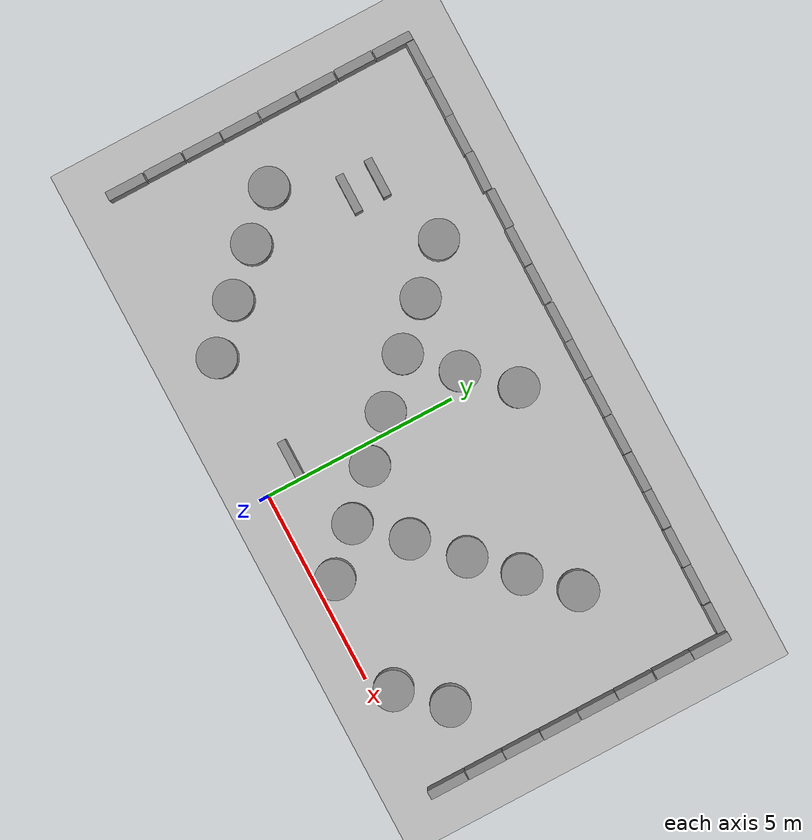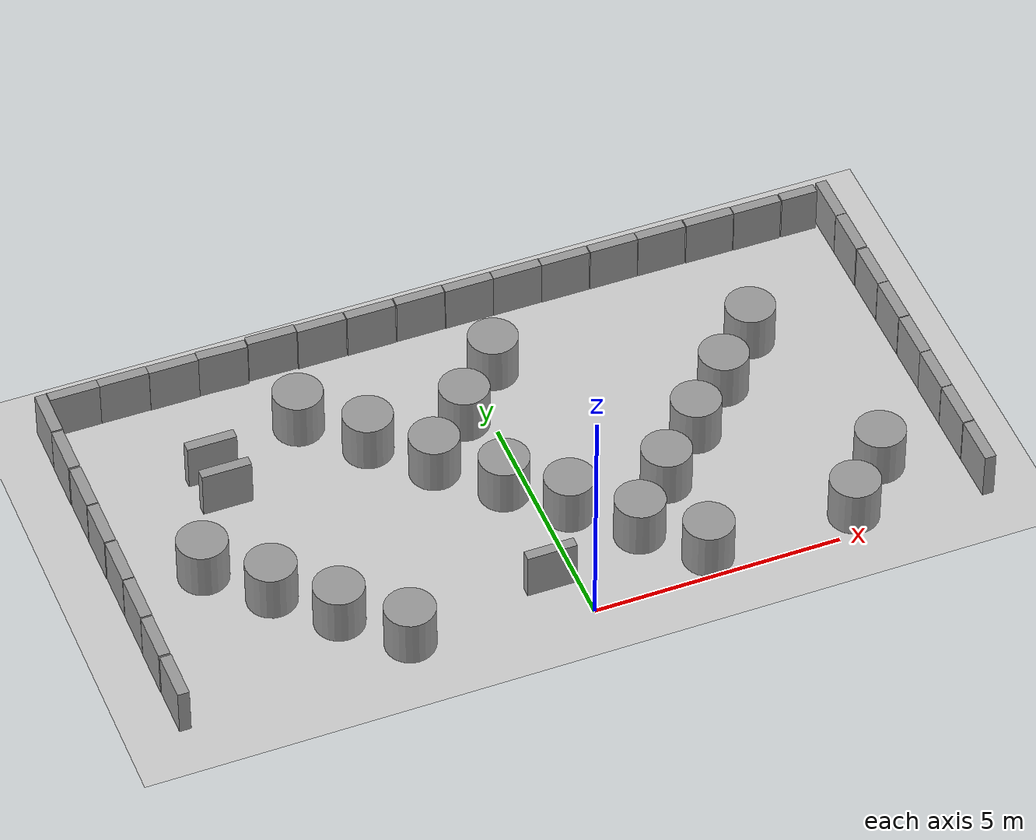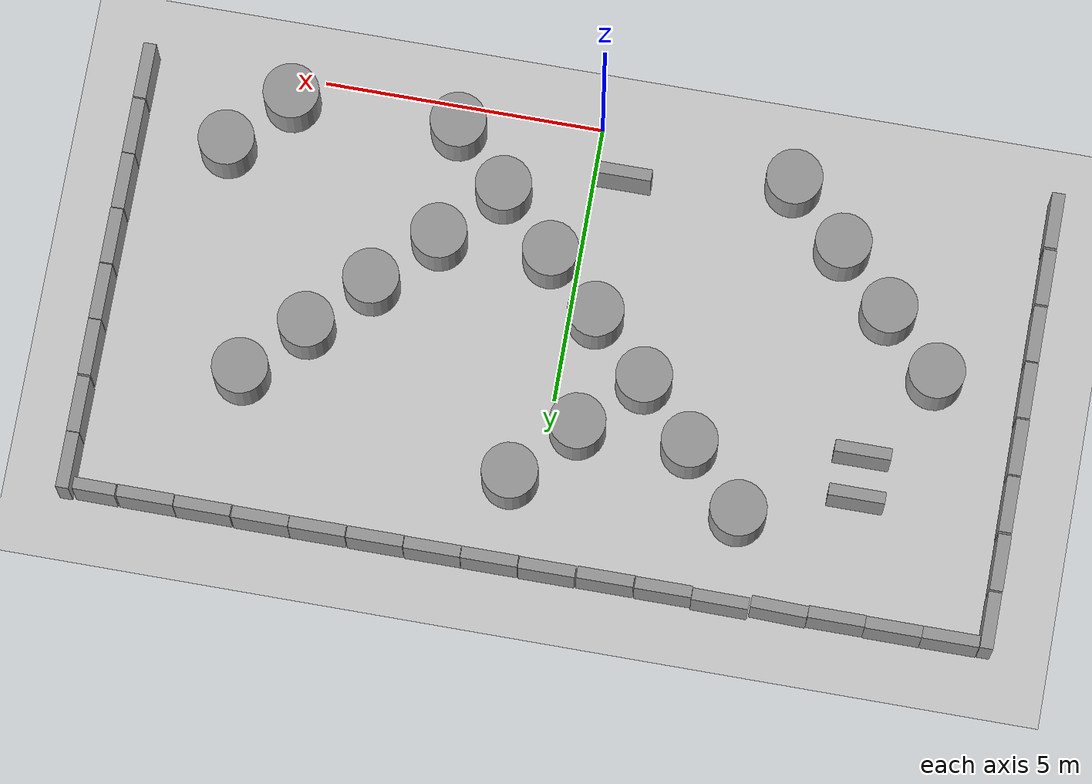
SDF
<sdf version="1.6">
 <world name="default">
  <model name="ground_plane">
   <static>1</static>
   <static>1</static>
   <link name="link">
    <collision name="collision">
     <geometry><plane><normal>0 0 1</normal><size>100 100</size></plane></geometry>
     <surface><friction><ode><mu>100</mu><mu2>50</mu2></ode></friction></surface>
    </collision>
    <visual name="visual">
     <cast_shadows>0</cast_shadows>
     <geometry><plane><normal>0 0 1</normal><size>100 100</size></plane></geometry>
     <material>
      <script><uri>file://media/materials/scripts/gazebo.material</uri><name>Gazebo/Grey</name></script>
     </material>
    </visual>
   </link>
  </model>
  <model name="unit_box_clone">
   <pose>-7.49845 8.12012 0.5 0 -0 0.000357</pose>
   <link name="link">
    <inertial>
     <mass>1</mass>
     <inertia>
      <ixx>0.166667</ixx>
      <ixy>0</ixy>
      <ixz>0</ixz>
      <iyy>0.166667</iyy>
      <iyz>0</iyz>
      <izz>0.166667</izz>
     </inertia>
    </inertial>
    <collision name="collision"><geometry><box><size>1 0.210541 1</size></box></geometry></collision>
    <visual name="visual">
     <geometry><box><size>1 0.210541 1</size></box></geometry>
     <material>
      <script><name>Gazebo/Grey</name><uri>file://media/materials/scripts/gazebo.material</uri></script>
     </material>
    </visual>
   </link>
  </model>
  <model name="unit_box_clone_0">
   <pose>-6.4973 8.11998 0.5 0 0 -0.002248</pose>
   <link name="link">
    <inertial>
     <mass>1</mass>
     <inertia>
      <ixx>0.166667</ixx>
      <ixy>0</ixy>
      <ixz>0</ixz>
      <iyy>0.166667</iyy>
      <iyz>0</iyz>
      <izz>0.166667</izz>
     </inertia>
    </inertial>
    <collision name="collision"><geometry><box><size>1 0.210541 1</size></box></geometry></collision>
    <visual name="visual">
     <geometry><box><size>1 0.210541 1</size></box></geometry>
     <material>
      <script><name>Gazebo/Grey</name><uri>file://media/materials/scripts/gazebo.material</uri></script>
     </material>
    </visual>
   </link>
  </model>
  <model name="unit_box_clone_1">
   <pose>-5.49732 8.10872 0.5 0 0 -0.00224</pose>
   <link name="link">
    <inertial>
     <mass>1</mass>
     <inertia>
      <ixx>0.166667</ixx>
      <ixy>0</ixy>
      <ixz>0</ixz>
      <iyy>0.166667</iyy>
      <iyz>0</iyz>
      <izz>0.166667</izz>
     </inertia>
    </inertial>
    <collision name="collision"><geometry><box><size>1 0.210541 1</size></box></geometry></collision>
    <visual name="visual">
     <geometry><box><size>1 0.210541 1</size></box></geometry>
     <material>
      <script><name>Gazebo/Grey</name><uri>file://media/materials/scripts/gazebo.material</uri></script>
     </material>
    </visual>
   </link>
  </model>
  <model name="unit_box_clone_2">
   <pose>-4.49484 8.11081 0.499999 -1e-06 2e-06 -0.026921</pose>
   <link name="link">
    <inertial>
     <mass>1</mass>
     <inertia>
      <ixx>0.166667</ixx>
      <ixy>0</ixy>
      <ixz>0</ixz>
      <iyy>0.166667</iyy>
      <iyz>0</iyz>
      <izz>0.166667</izz>
     </inertia>
    </inertial>
    <collision name="collision"><geometry><box><size>1 0.210541 1</size></box></geometry></collision>
    <visual name="visual">
     <geometry><box><size>1 0.210541 1</size></box></geometry>
     <material>
      <script><name>Gazebo/Grey</name><uri>file://media/materials/scripts/gazebo.material</uri></script>
     </material>
    </visual>
   </link>
  </model>
  <model name="unit_box_clone_3">
   <pose>-3.46835 8.15001 0.5 -0 -0 -0.007885</pose>
   <link name="link">
    <inertial>
     <mass>1</mass>
     <inertia>
      <ixx>0.166667</ixx>
      <ixy>0</ixy>
      <ixz>0</ixz>
      <iyy>0.166667</iyy>
      <iyz>0</iyz>
      <izz>0.166667</izz>
     </inertia>
    </inertial>
    <collision name="collision"><geometry><box><size>1 0.210541 1</size></box></geometry></collision>
    <visual name="visual">
     <geometry><box><size>1 0.210541 1</size></box></geometry>
     <material>
      <script><name>Gazebo/Grey</name><uri>file://media/materials/scripts/gazebo.material</uri></script>
     </material>
    </visual>
   </link>
  </model>
  <model name="unit_box_clone_4">
   <pose>-2.46316 8.11881 0.5 0 -0 0.000357</pose>
   <link name="link">
    <inertial>
     <mass>1</mass>
     <inertia>
      <ixx>0.166667</ixx>
      <ixy>0</ixy>
      <ixz>0</ixz>
      <iyy>0.166667</iyy>
      <iyz>0</iyz>
      <izz>0.166667</izz>
     </inertia>
    </inertial>
    <collision name="collision"><geometry><box><size>1 0.210541 1</size></box></geometry></collision>
    <visual name="visual">
     <geometry><box><size>1 0.210541 1</size></box></geometry>
     <material>
      <script><name>Gazebo/Grey</name><uri>file://media/materials/scripts/gazebo.material</uri></script>
     </material>
    </visual>
   </link>
  </model>
  <model name="unit_box_clone_5">
   <pose>-1.44425 8.11214 0.5 0 -0 0.000357</pose>
   <link name="link">
    <inertial>
     <mass>1</mass>
     <inertia>
      <ixx>0.166667</ixx>
      <ixy>0</ixy>
      <ixz>0</ixz>
      <iyy>0.166667</iyy>
      <iyz>0</iyz>
      <izz>0.166667</izz>
     </inertia>
    </inertial>
    <collision name="collision"><geometry><box><size>1 0.210541 1</size></box></geometry></collision>
    <visual name="visual">
     <geometry><box><size>1 0.210541 1</size></box></geometry>
     <material>
      <script><name>Gazebo/Grey</name><uri>file://media/materials/scripts/gazebo.material</uri></script>
     </material>
    </visual>
   </link>
  </model>
  <model name="unit_box_clone_6">
   <pose>-0.418685 8.1188 0.5 0 -0 0.000357</pose>
   <link name="link">
    <inertial>
     <mass>1</mass>
     <inertia>
      <ixx>0.166667</ixx>
      <ixy>0</ixy>
      <ixz>0</ixz>
      <iyy>0.166667</iyy>
      <iyz>0</iyz>
      <izz>0.166667</izz>
     </inertia>
    </inertial>
    <collision name="collision"><geometry><box><size>1 0.210541 1</size></box></geometry></collision>
    <visual name="visual">
     <geometry><box><size>1 0.210541 1</size></box></geometry>
     <material>
      <script><name>Gazebo/Grey</name><uri>file://media/materials/scripts/gazebo.material</uri></script>
     </material>
    </visual>
   </link>
  </model>
  <model name="unit_box_clone_7">
   <pose>0.592834 8.11167 0.5 0 -0 0.000357</pose>
   <link name="link">
    <inertial>
     <mass>1</mass>
     <inertia>
      <ixx>0.166667</ixx>
      <ixy>0</ixy>
      <ixz>0</ixz>
      <iyy>0.166667</iyy>
      <iyz>0</iyz>
      <izz>0.166667</izz>
     </inertia>
    </inertial>
    <collision name="collision"><geometry><box><size>1 0.210541 1</size></box></geometry></collision>
    <visual name="visual">
     <geometry><box><size>1 0.210541 1</size></box></geometry>
     <material>
      <script><name>Gazebo/Grey</name><uri>file://media/materials/scripts/gazebo.material</uri></script>
     </material>
    </visual>
   </link>
  </model>
  <model name="unit_box_clone_8">
   <pose>1.60043 8.11017 0.5 0 -0 0.000357</pose>
   <link name="link">
    <inertial>
     <mass>1</mass>
     <inertia>
      <ixx>0.166667</ixx>
      <ixy>0</ixy>
      <ixz>0</ixz>
      <iyy>0.166667</iyy>
      <iyz>0</iyz>
      <izz>0.166667</izz>
     </inertia>
    </inertial>
    <collision name="collision"><geometry><box><size>1 0.210541 1</size></box></geometry></collision>
    <visual name="visual">
     <geometry><box><size>1 0.210541 1</size></box></geometry>
     <material>
      <script><name>Gazebo/Grey</name><uri>file://media/materials/scripts/gazebo.material</uri></script>
     </material>
    </visual>
   </link>
  </model>
  <model name="unit_box_clone_9">
   <pose>2.60987 8.10299 0.5 0 -0 0.000357</pose>
   <link name="link">
    <inertial>
     <mass>1</mass>
     <inertia>
      <ixx>0.166667</ixx>
      <ixy>0</ixy>
      <ixz>0</ixz>
      <iyy>0.166667</iyy>
      <iyz>0</iyz>
      <izz>0.166667</izz>
     </inertia>
    </inertial>
    <collision name="collision"><geometry><box><size>1 0.210541 1</size></box></geometry></collision>
    <visual name="visual">
     <geometry><box><size>1 0.210541 1</size></box></geometry>
     <material>
      <script><name>Gazebo/Grey</name><uri>file://media/materials/scripts/gazebo.material</uri></script>
     </material>
    </visual>
   </link>
  </model>
  <model name="unit_box_clone_10">
   <pose>3.62649 8.09939 0.5 0 -0 0.000357</pose>
   <link name="link">
    <inertial>
     <mass>1</mass>
     <inertia>
      <ixx>0.166667</ixx>
      <ixy>0</ixy>
      <ixz>0</ixz>
      <iyy>0.166667</iyy>
      <iyz>0</iyz>
      <izz>0.166667</izz>
     </inertia>
    </inertial>
    <collision name="collision"><geometry><box><size>1 0.210541 1</size></box></geometry></collision>
    <visual name="visual">
     <geometry><box><size>1 0.210541 1</size></box></geometry>
     <material>
      <script><name>Gazebo/Grey</name><uri>file://media/materials/scripts/gazebo.material</uri></script>
     </material>
    </visual>
   </link>
  </model>
  <model name="unit_box_clone_11">
   <pose>4.63309 8.09511 0.499996 1e-06 9e-06 -0.003323</pose>
   <link name="link">
    <inertial>
     <mass>1</mass>
     <inertia>
      <ixx>0.166667</ixx>
      <ixy>0</ixy>
      <ixz>0</ixz>
      <iyy>0.166667</iyy>
      <iyz>0</iyz>
      <izz>0.166667</izz>
     </inertia>
    </inertial>
    <collision name="collision"><geometry><box><size>1 0.210541 1</size></box></geometry></collision>
    <visual name="visual">
     <geometry><box><size>1 0.210541 1</size></box></geometry>
     <material>
      <script><name>Gazebo/Grey</name><uri>file://media/materials/scripts/gazebo.material</uri></script>
     </material>
    </visual>
   </link>
  </model>
  <model name="unit_box_0_clone_0">
   <pose>8.11522 6.68458 0.5 0 -0 -0.000146</pose>
   <link name="link">
    <inertial>
     <mass>1</mass>
     <inertia>
      <ixx>0.166667</ixx>
      <ixy>0</ixy>
      <ixz>0</ixz>
      <iyy>0.166667</iyy>
      <iyz>0</iyz>
      <izz>0.166667</izz>
     </inertia>
    </inertial>
    <collision name="collision"><geometry><box><size>0.230819 1 1</size></box></geometry></collision>
    <visual name="visual">
     <geometry><box><size>0.230819 1 1</size></box></geometry>
     <material>
      <script><name>Gazebo/Grey</name><uri>file://media/materials/scripts/gazebo.material</uri></script>
     </material>
    </visual>
   </link>
  </model>
  <model name="unit_box_0_clone_1">
   <pose>8.11915 5.6517 0.5 0 -0 4.5e-05</pose>
   <link name="link">
    <inertial>
     <mass>1</mass>
     <inertia>
      <ixx>0.166667</ixx>
      <ixy>0</ixy>
      <ixz>0</ixz>
      <iyy>0.166667</iyy>
      <iyz>0</iyz>
      <izz>0.166667</izz>
     </inertia>
    </inertial>
    <collision name="collision"><geometry><box><size>0.230819 1 1</size></box></geometry></collision>
    <visual name="visual">
     <geometry><box><size>0.230819 1 1</size></box></geometry>
     <material>
      <script><name>Gazebo/Grey</name><uri>file://media/materials/scripts/gazebo.material</uri></script>
     </material>
    </visual>
   </link>
  </model>
  <model name="unit_box_0_clone_2">
   <pose>8.11914 4.64016 0.5 0 -0 0.000139</pose>
   <link name="link">
    <inertial>
     <mass>1</mass>
     <inertia>
      <ixx>0.166667</ixx>
      <ixy>0</ixy>
      <ixz>0</ixz>
      <iyy>0.166667</iyy>
      <iyz>0</iyz>
      <izz>0.166667</izz>
     </inertia>
    </inertial>
    <collision name="collision"><geometry><box><size>0.230819 1 1</size></box></geometry></collision>
    <visual name="visual">
     <geometry><box><size>0.230819 1 1</size></box></geometry>
     <material>
      <script><name>Gazebo/Grey</name><uri>file://media/materials/scripts/gazebo.material</uri></script>
     </material>
    </visual>
   </link>
  </model>
  <model name="unit_box_0_clone_3">
   <pose>8.11914 3.62228 0.5 0 -0 0.00012</pose>
   <link name="link">
    <inertial>
     <mass>1</mass>
     <inertia>
      <ixx>0.166667</ixx>
      <ixy>0</ixy>
      <ixz>0</ixz>
      <iyy>0.166667</iyy>
      <iyz>0</iyz>
      <izz>0.166667</izz>
     </inertia>
    </inertial>
    <collision name="collision"><geometry><box><size>0.230819 1 1</size></box></geometry></collision>
    <visual name="visual">
     <geometry><box><size>0.230819 1 1</size></box></geometry>
     <material>
      <script><name>Gazebo/Grey</name><uri>file://media/materials/scripts/gazebo.material</uri></script>
     </material>
    </visual>
   </link>
  </model>
  <model name="unit_box_0_clone_4">
   <pose>8.11332 2.61063 0.5 0 0 -0.001114</pose>
   <link name="link">
    <inertial>
     <mass>1</mass>
     <inertia>
      <ixx>0.166667</ixx>
      <ixy>0</ixy>
      <ixz>0</ixz>
      <iyy>0.166667</iyy>
      <iyz>0</iyz>
      <izz>0.166667</izz>
     </inertia>
    </inertial>
    <collision name="collision"><geometry><box><size>0.230819 1 1</size></box></geometry></collision>
    <visual name="visual">
     <geometry><box><size>0.230819 1 1</size></box></geometry>
     <material>
      <script><name>Gazebo/Grey</name><uri>file://media/materials/scripts/gazebo.material</uri></script>
     </material>
    </visual>
   </link>
  </model>
  <model name="unit_box_0_clone_5">
   <pose>8.11277 1.59919 0.5 0 -0 0.00012</pose>
   <link name="link">
    <inertial>
     <mass>1</mass>
     <inertia>
      <ixx>0.166667</ixx>
      <ixy>0</ixy>
      <ixz>0</ixz>
      <iyy>0.166667</iyy>
      <iyz>0</iyz>
      <izz>0.166667</izz>
     </inertia>
    </inertial>
    <collision name="collision"><geometry><box><size>0.230819 1 1</size></box></geometry></collision>
    <visual name="visual">
     <geometry><box><size>0.230819 1 1</size></box></geometry>
     <material>
      <script><name>Gazebo/Grey</name><uri>file://media/materials/scripts/gazebo.material</uri></script>
     </material>
    </visual>
   </link>
  </model>
  <model name="unit_box_0_clone_6">
   <pose>8.11277 0.574938 0.5 0 -0 0.00012</pose>
   <link name="link">
    <inertial>
     <mass>1</mass>
     <inertia>
      <ixx>0.166667</ixx>
      <ixy>0</ixy>
      <ixz>0</ixz>
      <iyy>0.166667</iyy>
      <iyz>0</iyz>
      <izz>0.166667</izz>
     </inertia>
    </inertial>
    <collision name="collision"><geometry><box><size>0.230819 1 1</size></box></geometry></collision>
    <visual name="visual">
     <geometry><box><size>0.230819 1 1</size></box></geometry>
     <material>
      <script><name>Gazebo/Grey</name><uri>file://media/materials/scripts/gazebo.material</uri></script>
     </material>
    </visual>
   </link>
  </model>
  <model name="unit_box_0_clone_4_clone">
   <pose>-8.12647 7.71769 0.5 0 -0 0.00012</pose>
   <link name="link">
    <inertial>
     <mass>1</mass>
     <inertia>
      <ixx>0.166667</ixx>
      <ixy>0</ixy>
      <ixz>0</ixz>
      <iyy>0.166667</iyy>
      <iyz>0</iyz>
      <izz>0.166667</izz>
     </inertia>
    </inertial>
    <collision name="collision"><geometry><box><size>0.230819 1 1</size></box></geometry></collision>
    <visual name="visual">
     <geometry><box><size>0.230819 1 1</size></box></geometry>
     <material>
      <script><name>Gazebo/Grey</name><uri>file://media/materials/scripts/gazebo.material</uri></script>
     </material>
    </visual>
   </link>
  </model>
  <model name="unit_box_0_clone_4_clone_0">
   <pose>-8.13281 6.68715 0.5 0 -0 0.00012</pose>
   <link name="link">
    <inertial>
     <mass>1</mass>
     <inertia>
      <ixx>0.166667</ixx>
      <ixy>0</ixy>
      <ixz>0</ixz>
      <iyy>0.166667</iyy>
      <iyz>0</iyz>
      <izz>0.166667</izz>
     </inertia>
    </inertial>
    <collision name="collision"><geometry><box><size>0.230819 1 1</size></box></geometry></collision>
    <visual name="visual">
     <geometry><box><size>0.230819 1 1</size></box></geometry>
     <material>
      <script><name>Gazebo/Grey</name><uri>file://media/materials/scripts/gazebo.material</uri></script>
     </material>
    </visual>
   </link>
  </model>
  <model name="unit_box_0_clone_4_clone_1">
   <pose>-8.12606 5.64722 0.5 0 -0 0.00012</pose>
   <link name="link">
    <inertial>
     <mass>1</mass>
     <inertia>
      <ixx>0.166667</ixx>
      <ixy>0</ixy>
      <ixz>0</ixz>
      <iyy>0.166667</iyy>
      <iyz>0</iyz>
      <izz>0.166667</izz>
     </inertia>
    </inertial>
    <collision name="collision"><geometry><box><size>0.230819 1 1</size></box></geometry></collision>
    <visual name="visual">
     <geometry><box><size>0.230819 1 1</size></box></geometry>
     <material>
      <script><name>Gazebo/Grey</name><uri>file://media/materials/scripts/gazebo.material</uri></script>
     </material>
    </visual>
   </link>
  </model>
  <model name="unit_box_0_clone_4_clone_2">
   <pose>-8.12607 4.6208 0.5 0 -0 0.00012</pose>
   <link name="link">
    <inertial>
     <mass>1</mass>
     <inertia>
      <ixx>0.166667</ixx>
      <ixy>0</ixy>
      <ixz>0</ixz>
      <iyy>0.166667</iyy>
      <iyz>0</iyz>
      <izz>0.166667</izz>
     </inertia>
    </inertial>
    <collision name="collision"><geometry><box><size>0.230819 1 1</size></box></geometry></collision>
    <visual name="visual">
     <geometry><box><size>0.230819 1 1</size></box></geometry>
     <material>
      <script><name>Gazebo/Grey</name><uri>file://media/materials/scripts/gazebo.material</uri></script>
     </material>
    </visual>
   </link>
  </model>
  <model name="unit_box_0_clone_4_clone_3">
   <pose>-8.11932 3.59437 0.5 0 -0 0.00012</pose>
   <link name="link">
    <inertial>
     <mass>1</mass>
     <inertia>
      <ixx>0.166667</ixx>
      <ixy>0</ixy>
      <ixz>0</ixz>
      <iyy>0.166667</iyy>
      <iyz>0</iyz>
      <izz>0.166667</izz>
     </inertia>
    </inertial>
    <collision name="collision"><geometry><box><size>0.230819 1 1</size></box></geometry></collision>
    <visual name="visual">
     <geometry><box><size>0.230819 1 1</size></box></geometry>
     <material>
      <script><name>Gazebo/Grey</name><uri>file://media/materials/scripts/gazebo.material</uri></script>
     </material>
    </visual>
   </link>
  </model>
  <model name="unit_box_0_clone_4_clone_4">
   <pose>-8.11932 2.57471 0.5 0 -0 0.00012</pose>
   <link name="link">
    <inertial>
     <mass>1</mass>
     <inertia>
      <ixx>0.166667</ixx>
      <ixy>0</ixy>
      <ixz>0</ixz>
      <iyy>0.166667</iyy>
      <iyz>0</iyz>
      <izz>0.166667</izz>
     </inertia>
    </inertial>
    <collision name="collision"><geometry><box><size>0.230819 1 1</size></box></geometry></collision>
    <visual name="visual">
     <geometry><box><size>0.230819 1 1</size></box></geometry>
     <material>
      <script><name>Gazebo/Grey</name><uri>file://media/materials/scripts/gazebo.material</uri></script>
     </material>
    </visual>
   </link>
  </model>
  <model name="unit_box_0_clone_4_clone_5">
   <pose>-8.12608 1.54157 0.5 0 -0 0.00012</pose>
   <link name="link">
    <inertial>
     <mass>1</mass>
     <inertia>
      <ixx>0.166667</ixx>
      <ixy>0</ixy>
      <ixz>0</ixz>
      <iyy>0.166667</iyy>
      <iyz>0</iyz>
      <izz>0.166667</izz>
     </inertia>
    </inertial>
    <collision name="collision"><geometry><box><size>0.230819 1 1</size></box></geometry></collision>
    <visual name="visual">
     <geometry><box><size>0.230819 1 1</size></box></geometry>
     <material>
      <script><name>Gazebo/Grey</name><uri>file://media/materials/scripts/gazebo.material</uri></script>
     </material>
    </visual>
   </link>
  </model>
  <model name="unit_box_0_clone_4_clone_6">
   <pose>-8.11933 0.50163 0.5 0 -0 0.00012</pose>
   <link name="link">
    <inertial>
     <mass>1</mass>
     <inertia>
      <ixx>0.166667</ixx>
      <ixy>0</ixy>
      <ixz>0</ixz>
      <iyy>0.166667</iyy>
      <iyz>0</iyz>
      <izz>0.166667</izz>
     </inertia>
    </inertial>
    <collision name="collision"><geometry><box><size>0.230819 1 1</size></box></geometry></collision>
    <visual name="visual">
     <geometry><box><size>0.230819 1 1</size></box></geometry>
     <material>
      <script><name>Gazebo/Grey</name><uri>file://media/materials/scripts/gazebo.material</uri></script>
     </material>
    </visual>
   </link>
  </model>
  <model name="unit_box_0_clone_0_clone">
   <pose>8.11438 7.69322 0.5 0 -0 2.7e-05</pose>
   <link name="link">
    <inertial>
     <mass>1</mass>
     <inertia>
      <ixx>0.166667</ixx>
      <ixy>0</ixy>
      <ixz>0</ixz>
      <iyy>0.166667</iyy>
      <iyz>0</iyz>
      <izz>0.166667</izz>
     </inertia>
    </inertial>
    <collision name="collision"><geometry><box><size>0.230819 1 1</size></box></geometry></collision>
    <visual name="visual">
     <geometry><box><size>0.230819 1 1</size></box></geometry>
     <material>
      <script><name>Gazebo/Grey</name><uri>file://media/materials/scripts/gazebo.material</uri></script>
     </material>
    </visual>
   </link>
  </model>
  <model name="unit_box_clone_11_clone">
   <pose>5.65439 8.08347 0.499996 1e-06 -9e-06 -0.00301</pose>
   <link name="link">
    <inertial>
     <mass>1</mass>
     <inertia>
      <ixx>0.166667</ixx>
      <ixy>0</ixy>
      <ixz>0</ixz>
      <iyy>0.166667</iyy>
      <iyz>0</iyz>
      <izz>0.166667</izz>
     </inertia>
    </inertial>
    <collision name="collision"><geometry><box><size>1 0.210541 1</size></box></geometry></collision>
    <visual name="visual">
     <geometry><box><size>1 0.210541 1</size></box></geometry>
     <material>
      <script><name>Gazebo/Grey</name><uri>file://media/materials/scripts/gazebo.material</uri></script>
     </material>
    </visual>
   </link>
  </model>
  <model name="unit_box_clone_11_clone_0">
   <pose>6.66439 8.07329 0.499996 1e-06 9e-06 -0.003245</pose>
   <link name="link">
    <inertial>
     <mass>1</mass>
     <inertia>
      <ixx>0.166667</ixx>
      <ixy>0</ixy>
      <ixz>0</ixz>
      <iyy>0.166667</iyy>
      <iyz>0</iyz>
      <izz>0.166667</izz>
     </inertia>
    </inertial>
    <collision name="collision"><geometry><box><size>1 0.210541 1</size></box></geometry></collision>
    <visual name="visual">
     <geometry><box><size>1 0.210541 1</size></box></geometry>
     <material>
      <script><name>Gazebo/Grey</name><uri>file://media/materials/scripts/gazebo.material</uri></script>
     </material>
    </visual>
   </link>
  </model>
  <model name="unit_box_clone_11_clone_1_clone">
   <pose>7.56439 8.07324 0.5 -0 1e-06 -0.007486</pose>
   <link name="link">
    <inertial>
     <mass>1</mass>
     <inertia>
      <ixx>0.166667</ixx>
      <ixy>0</ixy>
      <ixz>0</ixz>
      <iyy>0.166667</iyy>
      <iyz>0</iyz>
      <izz>0.166667</izz>
     </inertia>
    </inertial>
    <collision name="collision"><geometry><box><size>0.750223 0.210541 1</size></box></geometry></collision>
    <visual name="visual">
     <geometry><box><size>0.750223 0.210541 1</size></box></geometry>
     <material>
      <script><name>Gazebo/Grey</name><uri>file://media/materials/scripts/gazebo.material</uri></script>
     </material>
    </visual>
   </link>
  </model>
  <model name="unit_cylinder_clone_0_clone">
   <pose>1.52056 1.49925 0.499993 -3e-06 -1e-06 -0</pose>
   <link name="link">
    <inertial>
     <mass>1</mass>
     <inertia><ixx>0.145833</ixx><ixy>0</ixy><ixz>0</ixz><iyy>0.145833</iyy><iyz>0</iyz><izz>0.125</izz></inertia>
    </inertial>
    <collision name="collision">
     <geometry><cylinder><radius>0.5</radius><length>1</length></cylinder></geometry>
    </collision>
    <visual name="visual">
     <geometry><cylinder><radius>0.5</radius><length>1</length></cylinder></geometry>
     <material>
      <script><name>Gazebo/Grey</name><uri>file://media/materials/scripts/gazebo.material</uri></script>
     </material>
    </visual>
   </link>
  </model>
  <model name="unit_cylinder_clone_0_clone_clone">
   <pose>0.499219 2.51668 0.499993 -3e-06 -1e-06 -0</pose>
   <link name="link">
    <inertial>
     <mass>1</mass>
     <inertia><ixx>0.145833</ixx><ixy>0</ixy><ixz>0</ixz><iyy>0.145833</iyy><iyz>0</iyz><izz>0.125</izz></inertia>
    </inertial>
    <collision name="collision">
     <geometry><cylinder><radius>0.5</radius><length>1</length></cylinder></geometry>
    </collision>
    <visual name="visual">
     <geometry><cylinder><radius>0.5</radius><length>1</length></cylinder></geometry>
     <material>
      <script><name>Gazebo/Grey</name><uri>file://media/materials/scripts/gazebo.material</uri></script>
     </material>
    </visual>
   </link>
  </model>
  <model name="unit_cylinder_clone_0_clone_clone_0">
   <pose>-0.464999 3.45849 0.499997 3e-06 1e-06 -0</pose>
   <link name="link">
    <inertial>
     <mass>1</mass>
     <inertia><ixx>0.145833</ixx><ixy>0</ixy><ixz>0</ixz><iyy>0.145833</iyy><iyz>0</iyz><izz>0.125</izz></inertia>
    </inertial>
    <collision name="collision">
     <geometry><cylinder><radius>0.5</radius><length>1</length></cylinder></geometry>
    </collision>
    <visual name="visual">
     <geometry><cylinder><radius>0.5</radius><length>1</length></cylinder></geometry>
     <material>
      <script><name>Gazebo/Grey</name><uri>file://media/materials/scripts/gazebo.material</uri></script>
     </material>
    </visual>
   </link>
  </model>
  <model name="unit_cylinder_clone_0_clone_clone_1">
   <pose>-1.49649 4.46756 0.499993 -3e-06 -1e-06 -0</pose>
   <link name="link">
    <inertial>
     <mass>1</mass>
     <inertia><ixx>0.145833</ixx><ixy>0</ixy><ixz>0</ixz><iyy>0.145833</iyy><iyz>0</iyz><izz>0.125</izz></inertia>
    </inertial>
    <collision name="collision">
     <geometry><cylinder><radius>0.5</radius><length>1</length></cylinder></geometry>
    </collision>
    <visual name="visual">
     <geometry><cylinder><radius>0.5</radius><length>1</length></cylinder></geometry>
     <material>
      <script><name>Gazebo/Grey</name><uri>file://media/materials/scripts/gazebo.material</uri></script>
     </material>
    </visual>
   </link>
  </model>
  <model name="unit_cylinder_clone_0_clone_clone_2">
   <pose>-2.4734 5.47074 0.499997 3e-06 1e-06 -0</pose>
   <link name="link">
    <inertial>
     <mass>1</mass>
     <inertia><ixx>0.145833</ixx><ixy>0</ixy><ixz>0</ixz><iyy>0.145833</iyy><iyz>0</iyz><izz>0.125</izz></inertia>
    </inertial>
    <collision name="collision">
     <geometry><cylinder><radius>0.5</radius><length>1</length></cylinder></geometry>
    </collision>
    <visual name="visual">
     <geometry><cylinder><radius>0.5</radius><length>1</length></cylinder></geometry>
     <material>
      <script><name>Gazebo/Grey</name><uri>file://media/materials/scripts/gazebo.material</uri></script>
     </material>
    </visual>
   </link>
  </model>
  <model name="unit_cylinder_clone_0_clone_clone_3">
   <pose>-3.51017 6.51944 0.499993 -3e-06 -1e-06 -0</pose>
   <link name="link">
    <inertial>
     <mass>1</mass>
     <inertia><ixx>0.145833</ixx><ixy>0</ixy><ixz>0</ixz><iyy>0.145833</iyy><iyz>0</iyz><izz>0.125</izz></inertia>
    </inertial>
    <collision name="collision">
     <geometry><cylinder><radius>0.5</radius><length>1</length></cylinder></geometry>
    </collision>
    <visual name="visual">
     <geometry><cylinder><radius>0.5</radius><length>1</length></cylinder></geometry>
     <material>
      <script><name>Gazebo/Grey</name><uri>file://media/materials/scripts/gazebo.material</uri></script>
     </material>
    </visual>
   </link>
  </model>
  <model name="unit_cylinder_clone_0_clone_clone_4">
   <pose>2.50786 0.501345 0.499997 3e-06 1e-06 -0</pose>
   <link name="link">
    <inertial>
     <mass>1</mass>
     <inertia><ixx>0.145833</ixx><ixy>0</ixy><ixz>0</ixz><iyy>0.145833</iyy><iyz>0</iyz><izz>0.125</izz></inertia>
    </inertial>
    <collision name="collision">
     <geometry><cylinder><radius>0.5</radius><length>1</length></cylinder></geometry>
    </collision>
    <visual name="visual">
     <geometry><cylinder><radius>0.5</radius><length>1</length></cylinder></geometry>
     <material>
      <script><name>Gazebo/Grey</name><uri>file://media/materials/scripts/gazebo.material</uri></script>
     </material>
    </visual>
   </link>
  </model>
  <model name="unit_cylinder_clone_0_clone_clone_10">
   <pose>-5.5144 2.50624 0.499997 3e-06 1e-06 -0</pose>
   <link name="link">
    <inertial>
     <mass>1</mass>
     <inertia><ixx>0.145833</ixx><ixy>0</ixy><ixz>0</ixz><iyy>0.145833</iyy><iyz>0</iyz><izz>0.125</izz></inertia>
    </inertial>
    <collision name="collision">
     <geometry><cylinder><radius>0.5</radius><length>1</length></cylinder></geometry>
    </collision>
    <visual name="visual">
     <geometry><cylinder><radius>0.5</radius><length>1</length></cylinder></geometry>
     <material>
      <script><name>Gazebo/Grey</name><uri>file://media/materials/scripts/gazebo.material</uri></script>
     </material>
    </visual>
   </link>
  </model>
  <model name="unit_cylinder_clone_0_clone_clone_11">
   <pose>-4.53609 1.49636 0.499993 -3e-06 -1e-06 -0</pose>
   <link name="link">
    <inertial>
     <mass>1</mass>
     <inertia><ixx>0.145833</ixx><ixy>0</ixy><ixz>0</ixz><iyy>0.145833</iyy><iyz>0</iyz><izz>0.125</izz></inertia>
    </inertial>
    <collision name="collision">
     <geometry><cylinder><radius>0.5</radius><length>1</length></cylinder></geometry>
    </collision>
    <visual name="visual">
     <geometry><cylinder><radius>0.5</radius><length>1</length></cylinder></geometry>
     <material>
      <script><name>Gazebo/Grey</name><uri>file://media/materials/scripts/gazebo.material</uri></script>
     </material>
    </visual>
   </link>
  </model>
  <model name="unit_cylinder_clone_0_clone_clone_9">
   <pose>-3.49823 0.501015 0.499997 3e-06 1e-06 -0</pose>
   <link name="link">
    <inertial>
     <mass>1</mass>
     <inertia><ixx>0.145833</ixx><ixy>0</ixy><ixz>0</ixz><iyy>0.145833</iyy><iyz>0</iyz><izz>0.125</izz></inertia>
    </inertial>
    <collision name="collision">
     <geometry><cylinder><radius>0.5</radius><length>1</length></cylinder></geometry>
    </collision>
    <visual name="visual">
     <geometry><cylinder><radius>0.5</radius><length>1</length></cylinder></geometry>
     <material>
      <script><name>Gazebo/Grey</name><uri>file://media/materials/scripts/gazebo.material</uri></script>
     </material>
    </visual>
   </link>
  </model>
  <model name="unit_cylinder_clone_0_clone_clone_19">
   <pose>-6.51515 3.51739 0.499993 -2e-06 -1e-06 0</pose>
   <link name="link">
    <inertial>
     <mass>1</mass>
     <inertia><ixx>0.145833</ixx><ixy>0</ixy><ixz>0</ixz><iyy>0.145833</iyy><iyz>0</iyz><izz>0.125</izz></inertia>
    </inertial>
    <collision name="collision">
     <geometry><cylinder><radius>0.5</radius><length>1</length></cylinder></geometry>
    </collision>
    <visual name="visual">
     <geometry><cylinder><radius>0.5</radius><length>1</length></cylinder></geometry>
     <material>
      <script><name>Gazebo/Grey</name><uri>file://media/materials/scripts/gazebo.material</uri></script>
     </material>
    </visual>
   </link>
  </model>
  <model name="unit_cylinder_clone_0_clone_clone_27">
   <pose>5.50391 0.493922 0.499992 -3e-06 2e-06 0</pose>
   <link name="link">
    <inertial>
     <mass>1</mass>
     <inertia><ixx>0.145833</ixx><ixy>0</ixy><ixz>0</ixz><iyy>0.145833</iyy><iyz>0</iyz><izz>0.125</izz></inertia>
    </inertial>
    <collision name="collision">
     <geometry><cylinder><radius>0.5</radius><length>1</length></cylinder></geometry>
    </collision>
    <visual name="visual">
     <geometry><cylinder><radius>0.5</radius><length>1</length></cylinder></geometry>
     <material>
      <script><name>Gazebo/Grey</name><uri>file://media/materials/scripts/gazebo.material</uri></script>
     </material>
    </visual>
   </link>
  </model>
  <model name="unit_cylinder_clone_0_clone_clone_28">
   <pose>6.47327 1.52191 0.499993 -3e-06 2e-06 0</pose>
   <link name="link">
    <inertial>
     <mass>1</mass>
     <inertia><ixx>0.145833</ixx><ixy>0</ixy><ixz>0</ixz><iyy>0.145833</iyy><iyz>0</iyz><izz>0.125</izz></inertia>
    </inertial>
    <collision name="collision">
     <geometry><cylinder><radius>0.5</radius><length>1</length></cylinder></geometry>
    </collision>
    <visual name="visual">
     <geometry><cylinder><radius>0.5</radius><length>1</length></cylinder></geometry>
     <material>
      <script><name>Gazebo/Grey</name><uri>file://media/materials/scripts/gazebo.material</uri></script>
     </material>
    </visual>
   </link>
  </model>
  <model name="unit_cylinder_clone_0_clone_clone_29">
   <pose>2.49058 2.53918 0.499993 -3e-06 2e-06 0</pose>
   <link name="link">
    <inertial>
     <mass>1</mass>
     <inertia><ixx>0.145833</ixx><ixy>0</ixy><ixz>0</ixz><iyy>0.145833</iyy><iyz>0</iyz><izz>0.125</izz></inertia>
    </inertial>
    <collision name="collision">
     <geometry><cylinder><radius>0.5</radius><length>1</length></cylinder></geometry>
    </collision>
    <visual name="visual">
     <geometry><cylinder><radius>0.5</radius><length>1</length></cylinder></geometry>
     <material>
      <script><name>Gazebo/Grey</name><uri>file://media/materials/scripts/gazebo.material</uri></script>
     </material>
    </visual>
   </link>
  </model>
  <model name="unit_cylinder_clone_0_clone_clone_30">
   <pose>3.5153 3.54903 0.499993 -3e-06 -1e-06 -0</pose>
   <link name="link">
    <inertial>
     <mass>1</mass>
     <inertia><ixx>0.145833</ixx><ixy>0</ixy><ixz>0</ixz><iyy>0.145833</iyy><iyz>0</iyz><izz>0.125</izz></inertia>
    </inertial>
    <collision name="collision">
     <geometry><cylinder><radius>0.5</radius><length>1</length></cylinder></geometry>
    </collision>
    <visual name="visual">
     <geometry><cylinder><radius>0.5</radius><length>1</length></cylinder></geometry>
     <material>
      <script><name>Gazebo/Grey</name><uri>file://media/materials/scripts/gazebo.material</uri></script>
     </material>
    </visual>
   </link>
  </model>
  <model name="unit_cylinder_clone_0_clone_clone_31">
   <pose>4.49546 4.51434 0.499993 -3e-06 2e-06 0</pose>
   <link name="link">
    <inertial>
     <mass>1</mass>
     <inertia><ixx>0.145833</ixx><ixy>0</ixy><ixz>0</ixz><iyy>0.145833</iyy><iyz>0</iyz><izz>0.125</izz></inertia>
    </inertial>
    <collision name="collision">
     <geometry><cylinder><radius>0.5</radius><length>1</length></cylinder></geometry>
    </collision>
    <visual name="visual">
     <geometry><cylinder><radius>0.5</radius><length>1</length></cylinder></geometry>
     <material>
      <script><name>Gazebo/Grey</name><uri>file://media/materials/scripts/gazebo.material</uri></script>
     </material>
    </visual>
   </link>
  </model>
  <model name="unit_cylinder_clone_0_clone_clone_32">
   <pose>5.47563 5.52419 0.499993 -3e-06 -1e-06 -0</pose>
   <link name="link">
    <inertial>
     <mass>1</mass>
     <inertia><ixx>0.145833</ixx><ixy>0</ixy><ixz>0</ixz><iyy>0.145833</iyy><iyz>0</iyz><izz>0.125</izz></inertia>
    </inertial>
    <collision name="collision">
     <geometry><cylinder><radius>0.5</radius><length>1</length></cylinder></geometry>
    </collision>
    <visual name="visual">
     <geometry><cylinder><radius>0.5</radius><length>1</length></cylinder></geometry>
     <material>
      <script><name>Gazebo/Grey</name><uri>file://media/materials/scripts/gazebo.material</uri></script>
     </material>
    </visual>
   </link>
  </model>
  <model name="unit_cylinder_clone_0_clone_clone_33">
   <pose>-0.494441 5.47967 0.499998 3e-06 -3e-06 0</pose>
   <link name="link">
    <inertial>
     <mass>1</mass>
     <inertia><ixx>0.145833</ixx><ixy>0</ixy><ixz>0</ixz><iyy>0.145833</iyy><iyz>0</iyz><izz>0.125</izz></inertia>
    </inertial>
    <collision name="collision">
     <geometry><cylinder><radius>0.5</radius><length>1</length></cylinder></geometry>
    </collision>
    <visual name="visual">
     <geometry><cylinder><radius>0.5</radius><length>1</length></cylinder></geometry>
     <material>
      <script><name>Gazebo/Grey</name><uri>file://media/materials/scripts/gazebo.material</uri></script>
     </material>
    </visual>
   </link>
  </model>
  <model name="unit_cylinder_clone_0_clone_clone_34">
   <pose>0.515429 6.54893 0.499993 -3e-06 3e-06 0</pose>
   <link name="link">
    <inertial>
     <mass>1</mass>
     <inertia><ixx>0.145833</ixx><ixy>0</ixy><ixz>0</ixz><iyy>0.145833</iyy><iyz>0</iyz><izz>0.125</izz></inertia>
    </inertial>
    <collision name="collision">
     <geometry><cylinder><radius>0.5</radius><length>1</length></cylinder></geometry>
    </collision>
    <visual name="visual">
     <geometry><cylinder><radius>0.5</radius><length>1</length></cylinder></geometry>
     <material>
      <script><name>Gazebo/Grey</name><uri>file://media/materials/scripts/gazebo.material</uri></script>
     </material>
    </visual>
   </link>
  </model>
  <model name="unit_box_clone_5_clone">
   <pose>-0.52414 0.921147 0.5 0 -0 0.000275</pose>
   <link name="link">
    <inertial>
     <mass>1</mass>
     <inertia>
      <ixx>0.166667</ixx>
      <ixy>0</ixy>
      <ixz>0</ixz>
      <iyy>0.166667</iyy>
      <iyz>0</iyz>
      <izz>0.166667</izz>
     </inertia>
    </inertial>
    <collision name="collision"><geometry><box><size>1 0.210541 1</size></box></geometry></collision>
    <visual name="visual">
     <geometry><box><size>1 0.210541 1</size></box></geometry>
     <material>
      <script><name>Gazebo/Grey</name><uri>file://media/materials/scripts/gazebo.material</uri></script>
     </material>
    </visual>
   </link>
  </model>
  <model name="unit_box_clone_5_clone_1">
   <pose>-5.47784 5.13191 0.5 0 -0 0.000357</pose>
   <link name="link">
    <inertial>
     <mass>1</mass>
     <inertia>
      <ixx>0.166667</ixx>
      <ixy>0</ixy>
      <ixz>0</ixz>
      <iyy>0.166667</iyy>
      <iyz>0</iyz>
      <izz>0.166667</izz>
     </inertia>
    </inertial>
    <collision name="collision"><geometry><box><size>1 0.210541 1</size></box></geometry></collision>
    <visual name="visual">
     <geometry><box><size>1 0.210541 1</size></box></geometry>
     <material>
      <script><name>Gazebo/Grey</name><uri>file://media/materials/scripts/gazebo.material</uri></script>
     </material>
    </visual>
   </link>
  </model>
  <model name="unit_box_clone_5_clone_2">
   <pose>-5.49561 5.91386 0.5 0 -0 0.000245</pose>
   <link name="link">
    <inertial>
     <mass>1</mass>
     <inertia>
      <ixx>0.166667</ixx>
      <ixy>0</ixy>
      <ixz>0</ixz>
      <iyy>0.166667</iyy>
      <iyz>0</iyz>
      <izz>0.166667</izz>
     </inertia>
    </inertial>
    <collision name="collision"><geometry><box><size>1 0.210541 1</size></box></geometry></collision>
    <visual name="visual">
     <geometry><box><size>1 0.210541 1</size></box></geometry>
     <material>
      <script><name>Gazebo/Grey</name><uri>file://media/materials/scripts/gazebo.material</uri></script>
     </material>
    </visual>
   </link>
  </model>
 </world>
</sdf>
